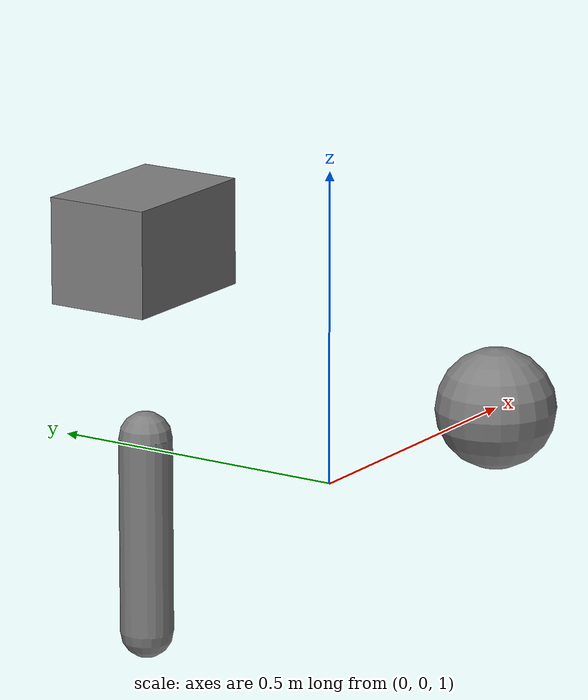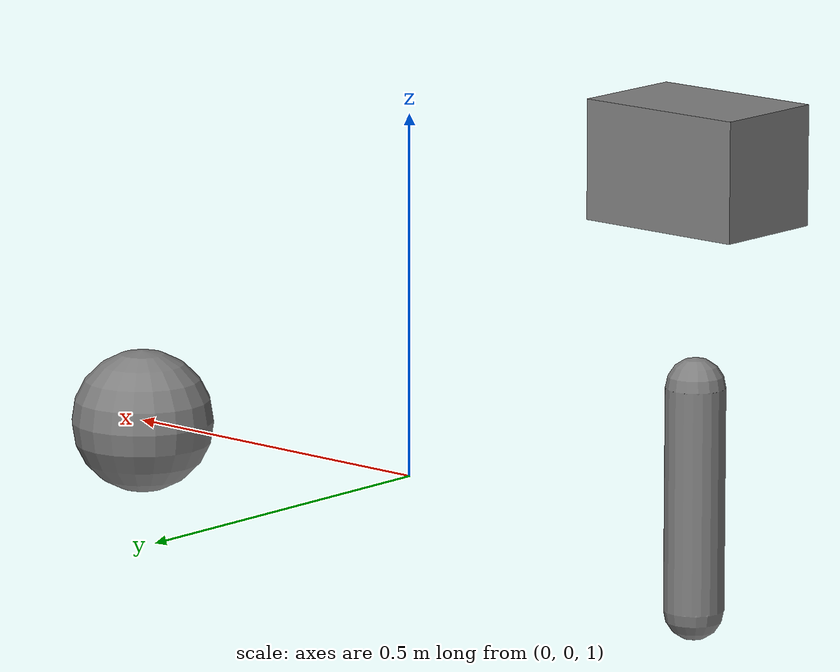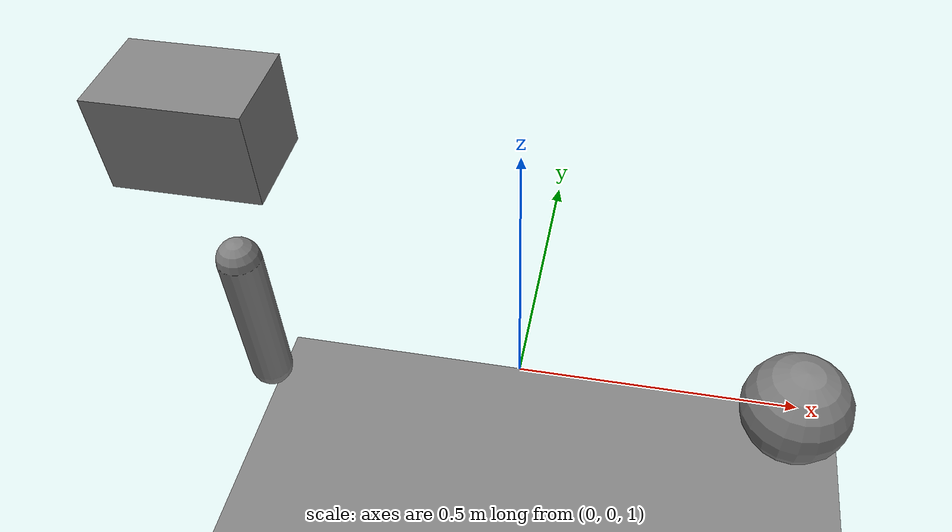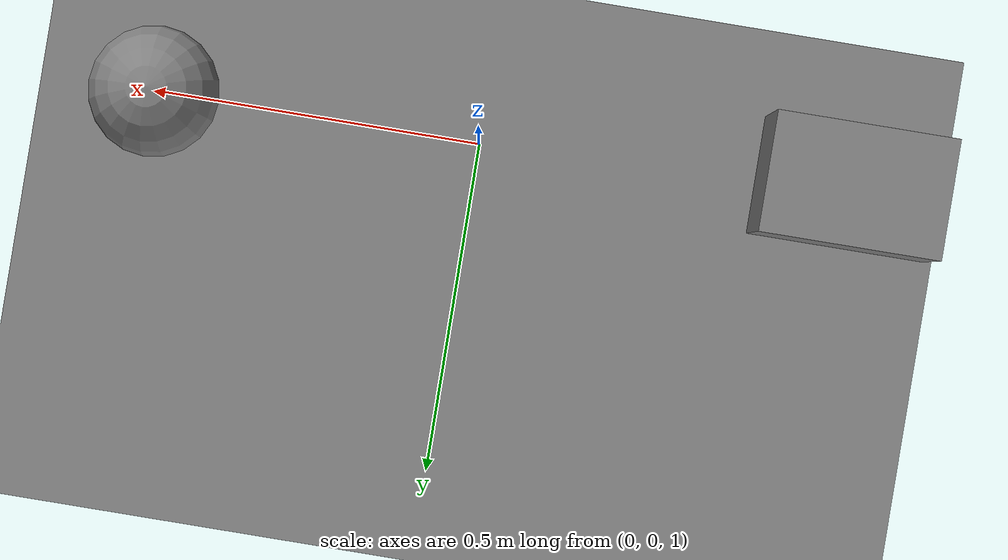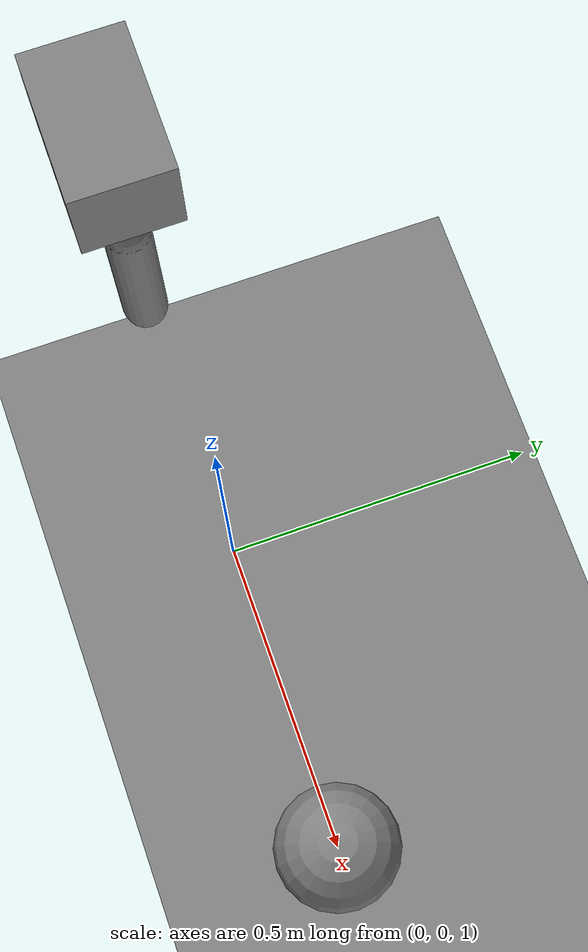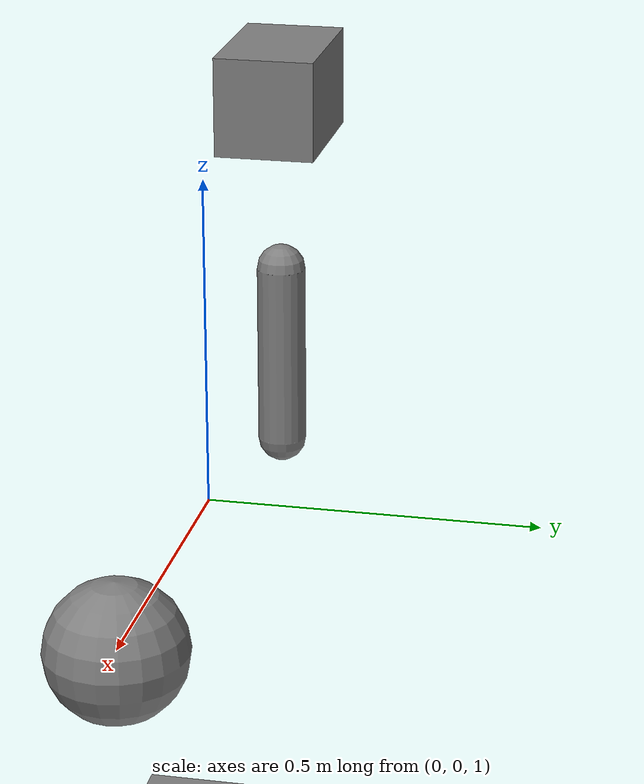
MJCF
<mujoco model="weld-stress-test">
          <compiler angle="radian"/>
          <option gravity="0 0 -9.81" timestep="0.001" solver="Newton"
                  iterations="50" tolerance="1e-10">
            <flag energy="enable"/>
          </option>
          <worldbody>
            <geom name="ground" type="plane" size="2 2 0.01"/>

            <!-- Welded pair — base + arm, falling together -->
            <body name="base" pos="-0.5 0 1.5">
              <freejoint/>
              <geom name="base_box" type="box" size="0.12 0.08 0.08" mass="1.0"/>
            </body>
            <body name="arm" pos="-0.5 0 1.2">
              <freejoint/>
              <geom name="arm_cap" type="capsule" fromto="0 0 0 0 0 -0.3" size="0.04" mass="0.5"/>
            </body>

            <!-- Fixed to world — should resist gravity.
                 Offset body requires stiffer solref to avoid penalty-method
                 pendulum drift (MuJoCo shows 549mm with default solref). -->
            <body name="fixed" pos="0.5 0 1.0">
              <freejoint/>
              <geom name="fixed_sphere" type="sphere" size="0.1" mass="1.0"/>
            </body>
          </worldbody>
          <equality>
            <weld body1="base" body2="arm" solref="0.02 1.0"/>
            <weld body1="fixed" solref="0.004 1.0"/>
          </equality>
        </mujoco>
